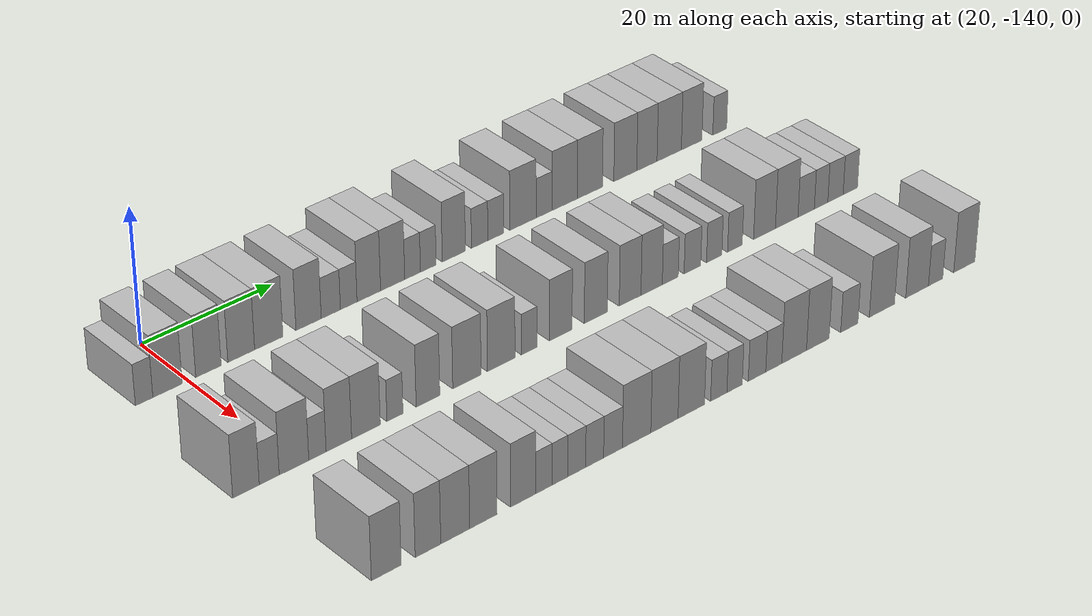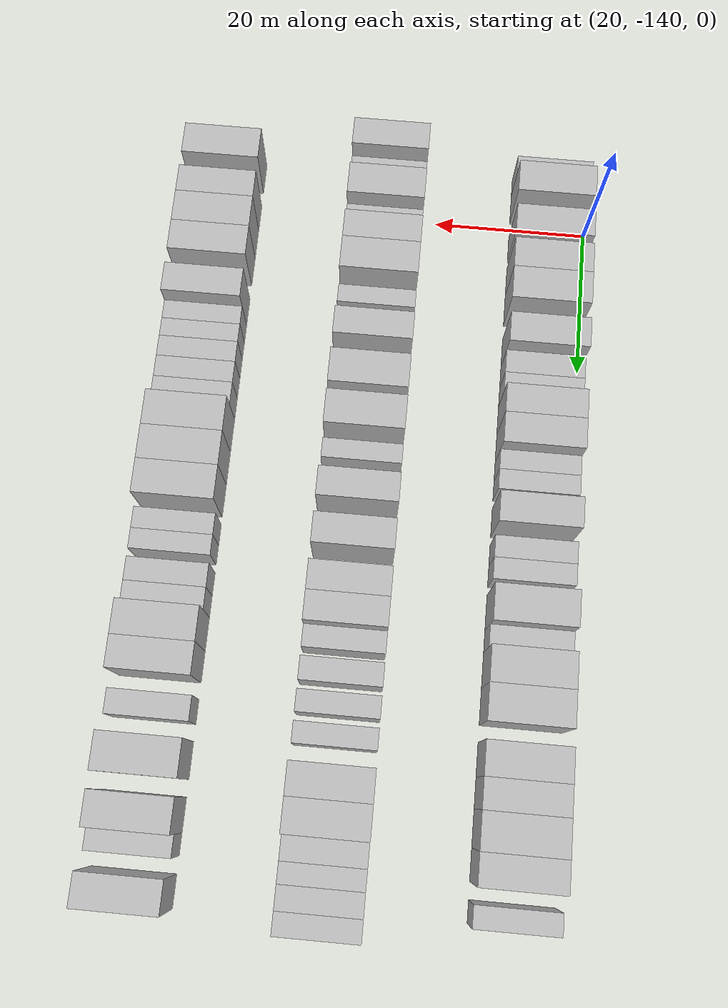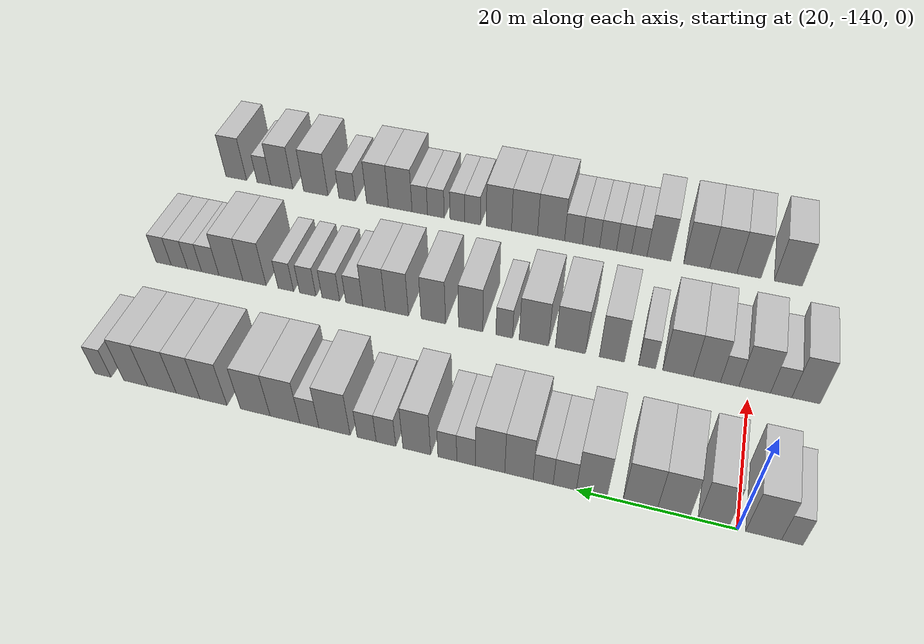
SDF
<sdf version="1.6">
 <world name="default">
  <model name="building_29">
   <static>1</static>
   <pose>25.0000 -146.4961 0 0.000000 0.000000 0.000000</pose>
   <link name="link">
    <pose>0 0 3.00 0 0 0</pose>
    <collision name="collision"><geometry><box><size>10.0000 2.5310 6.0000</size></box></geometry></collision>
    <visual name="visual">
     <cast_shadows>0</cast_shadows>
     <geometry><box><size>10.0000 2.5310 6.0000</size></box></geometry>
     <material>
      <script>
       <uri>model://HANNAS_wall/materials/scripts</uri>
       <uri>model://HANNAS_wall/materials/textures</uri>
       <name>vrc/HANNAS_wall</name>
      </script>
     </material>
    </visual>
   </link>
  </model>
  <model name="building_30">
   <static>1</static>
   <pose>25.0000 -143.0944 0 0.000000 0.000000 0.000000</pose>
   <link name="link">
    <pose>0 0 4.50 0 0 0</pose>
    <collision name="collision"><geometry><box><size>10.0000 4.2724 9.0000</size></box></geometry></collision>
    <visual name="visual">
     <cast_shadows>0</cast_shadows>
     <geometry><box><size>10.0000 4.2724 9.0000</size></box></geometry>
     <material>
      <script>
       <uri>model://HANNAS_wall/materials/scripts</uri>
       <uri>model://HANNAS_wall/materials/textures</uri>
       <name>vrc/HANNAS_wall</name>
      </script>
     </material>
    </visual>
   </link>
  </model>
  <model name="building_31">
   <static>1</static>
   <pose>25.0000 -137.0730 0 0.000000 0.000000 0.000000</pose>
   <link name="link">
    <pose>0 0 4.50 0 0 0</pose>
    <collision name="collision"><geometry><box><size>10.0000 3.7703 9.0000</size></box></geometry></collision>
    <visual name="visual">
     <cast_shadows>0</cast_shadows>
     <geometry><box><size>10.0000 3.7703 9.0000</size></box></geometry>
     <material>
      <script>
       <uri>model://HANNAS_wall/materials/scripts</uri>
       <uri>model://HANNAS_wall/materials/textures</uri>
       <name>vrc/HANNAS_wall</name>
      </script>
     </material>
    </visual>
   </link>
  </model>
  <model name="building_32">
   <static>1</static>
   <pose>25.0000 -132.1731 0 0.000000 0.000000 0.000000</pose>
   <link name="link">
    <pose>0 0 4.50 0 0 0</pose>
    <collision name="collision"><geometry><box><size>10.0000 4.0297 9.0000</size></box></geometry></collision>
    <visual name="visual">
     <cast_shadows>0</cast_shadows>
     <geometry><box><size>10.0000 4.0297 9.0000</size></box></geometry>
     <material>
      <script>
       <uri>model://HANNAS_wall/materials/scripts</uri>
       <uri>model://HANNAS_wall/materials/textures</uri>
       <name>vrc/HANNAS_wall</name>
      </script>
     </material>
    </visual>
   </link>
  </model>
  <model name="building_33">
   <static>1</static>
   <pose>25.0000 -128.0066 0 0.000000 0.000000 0.000000</pose>
   <link name="link">
    <pose>0 0 4.50 0 0 0</pose>
    <collision name="collision"><geometry><box><size>10.0000 4.3032 9.0000</size></box></geometry></collision>
    <visual name="visual">
     <cast_shadows>0</cast_shadows>
     <geometry><box><size>10.0000 4.3032 9.0000</size></box></geometry>
     <material>
      <script>
       <uri>model://HANNAS_wall/materials/scripts</uri>
       <uri>model://HANNAS_wall/materials/textures</uri>
       <name>vrc/HANNAS_wall</name>
      </script>
     </material>
    </visual>
   </link>
  </model>
  <model name="building_34">
   <static>1</static>
   <pose>25.0000 -121.8989 0 0.000000 0.000000 0.000000</pose>
   <link name="link">
    <pose>0 0 4.50 0 0 0</pose>
    <collision name="collision"><geometry><box><size>10.0000 3.9122 9.0000</size></box></geometry></collision>
    <visual name="visual">
     <cast_shadows>0</cast_shadows>
     <geometry><box><size>10.0000 3.9122 9.0000</size></box></geometry>
     <material>
      <script>
       <uri>model://HANNAS_wall/materials/scripts</uri>
       <uri>model://HANNAS_wall/materials/textures</uri>
       <name>vrc/HANNAS_wall</name>
      </script>
     </material>
    </visual>
   </link>
  </model>
  <model name="building_35">
   <static>1</static>
   <pose>25.0000 -118.4441 0 0.000000 0.000000 0.000000</pose>
   <link name="link">
    <pose>0 0 3.00 0 0 0</pose>
    <collision name="collision"><geometry><box><size>10.0000 2.9973 6.0000</size></box></geometry></collision>
    <visual name="visual">
     <cast_shadows>0</cast_shadows>
     <geometry><box><size>10.0000 2.9973 6.0000</size></box></geometry>
     <material>
      <script>
       <uri>model://HANNAS_wall/materials/scripts</uri>
       <uri>model://HANNAS_wall/materials/textures</uri>
       <name>vrc/HANNAS_wall</name>
      </script>
     </material>
    </visual>
   </link>
  </model>
  <model name="building_36">
   <static>1</static>
   <pose>25.0000 -115.6381 0 0.000000 0.000000 0.000000</pose>
   <link name="link">
    <pose>0 0 3.00 0 0 0</pose>
    <collision name="collision"><geometry><box><size>10.0000 2.6147 6.0000</size></box></geometry></collision>
    <visual name="visual">
     <cast_shadows>0</cast_shadows>
     <geometry><box><size>10.0000 2.6147 6.0000</size></box></geometry>
     <material>
      <script>
       <uri>model://HANNAS_wall/materials/scripts</uri>
       <uri>model://HANNAS_wall/materials/textures</uri>
       <name>vrc/HANNAS_wall</name>
      </script>
     </material>
    </visual>
   </link>
  </model>
  <model name="building_37">
   <static>1</static>
   <pose>25.0000 -112.4635 0 0.000000 0.000000 0.000000</pose>
   <link name="link">
    <pose>0 0 4.50 0 0 0</pose>
    <collision name="collision"><geometry><box><size>10.0000 3.7345 9.0000</size></box></geometry></collision>
    <visual name="visual">
     <cast_shadows>0</cast_shadows>
     <geometry><box><size>10.0000 3.7345 9.0000</size></box></geometry>
     <material>
      <script>
       <uri>model://HANNAS_wall/materials/scripts</uri>
       <uri>model://HANNAS_wall/materials/textures</uri>
       <name>vrc/HANNAS_wall</name>
      </script>
     </material>
    </visual>
   </link>
  </model>
  <model name="building_38">
   <static>1</static>
   <pose>25.0000 -108.6606 0 0.000000 0.000000 0.000000</pose>
   <link name="link">
    <pose>0 0 4.50 0 0 0</pose>
    <collision name="collision"><geometry><box><size>10.0000 3.8712 9.0000</size></box></geometry></collision>
    <visual name="visual">
     <cast_shadows>0</cast_shadows>
     <geometry><box><size>10.0000 3.8712 9.0000</size></box></geometry>
     <material>
      <script>
       <uri>model://HANNAS_wall/materials/scripts</uri>
       <uri>model://HANNAS_wall/materials/textures</uri>
       <name>vrc/HANNAS_wall</name>
      </script>
     </material>
    </visual>
   </link>
  </model>
  <model name="building_39">
   <static>1</static>
   <pose>25.0000 -105.4579 0 0.000000 0.000000 0.000000</pose>
   <link name="link">
    <pose>0 0 3.00 0 0 0</pose>
    <collision name="collision"><geometry><box><size>10.0000 2.5342 6.0000</size></box></geometry></collision>
    <visual name="visual">
     <cast_shadows>0</cast_shadows>
     <geometry><box><size>10.0000 2.5342 6.0000</size></box></geometry>
     <material>
      <script>
       <uri>model://HANNAS_wall/materials/scripts</uri>
       <uri>model://HANNAS_wall/materials/textures</uri>
       <name>vrc/HANNAS_wall</name>
      </script>
     </material>
    </visual>
   </link>
  </model>
  <model name="building_40">
   <static>1</static>
   <pose>25.0000 -102.9112 0 0.000000 0.000000 0.000000</pose>
   <link name="link">
    <pose>0 0 3.00 0 0 0</pose>
    <collision name="collision"><geometry><box><size>10.0000 2.5594 6.0000</size></box></geometry></collision>
    <visual name="visual">
     <cast_shadows>0</cast_shadows>
     <geometry><box><size>10.0000 2.5594 6.0000</size></box></geometry>
     <material>
      <script>
       <uri>model://HANNAS_wall/materials/scripts</uri>
       <uri>model://HANNAS_wall/materials/textures</uri>
       <name>vrc/HANNAS_wall</name>
      </script>
     </material>
    </visual>
   </link>
  </model>
  <model name="building_41">
   <static>1</static>
   <pose>25.0000 -98.7287 0 0.000000 0.000000 0.000000</pose>
   <link name="link">
    <pose>0 0 4.50 0 0 0</pose>
    <collision name="collision"><geometry><box><size>10.0000 3.8055 9.0000</size></box></geometry></collision>
    <visual name="visual">
     <cast_shadows>0</cast_shadows>
     <geometry><box><size>10.0000 3.8055 9.0000</size></box></geometry>
     <material>
      <script>
       <uri>model://HANNAS_wall/materials/scripts</uri>
       <uri>model://HANNAS_wall/materials/textures</uri>
       <name>vrc/HANNAS_wall</name>
      </script>
     </material>
    </visual>
   </link>
  </model>
  <model name="building_42">
   <static>1</static>
   <pose>25.0000 -94.4601 0 0.000000 0.000000 0.000000</pose>
   <link name="link">
    <pose>0 0 3.00 0 0 0</pose>
    <collision name="collision"><geometry><box><size>10.0000 2.7317 6.0000</size></box></geometry></collision>
    <visual name="visual">
     <cast_shadows>0</cast_shadows>
     <geometry><box><size>10.0000 2.7317 6.0000</size></box></geometry>
     <material>
      <script>
       <uri>model://HANNAS_wall/materials/scripts</uri>
       <uri>model://HANNAS_wall/materials/textures</uri>
       <name>vrc/HANNAS_wall</name>
      </script>
     </material>
    </visual>
   </link>
  </model>
  <model name="building_43">
   <static>1</static>
   <pose>25.0000 -91.7571 0 0.000000 0.000000 0.000000</pose>
   <link name="link">
    <pose>0 0 3.00 0 0 0</pose>
    <collision name="collision"><geometry><box><size>10.0000 2.6743 6.0000</size></box></geometry></collision>
    <visual name="visual">
     <cast_shadows>0</cast_shadows>
     <geometry><box><size>10.0000 2.6743 6.0000</size></box></geometry>
     <material>
      <script>
       <uri>model://HANNAS_wall/materials/scripts</uri>
       <uri>model://HANNAS_wall/materials/textures</uri>
       <name>vrc/HANNAS_wall</name>
      </script>
     </material>
    </visual>
   </link>
  </model>
  <model name="building_44">
   <static>1</static>
   <pose>25.0000 -87.1862 0 0.000000 0.000000 0.000000</pose>
   <link name="link">
    <pose>0 0 4.50 0 0 0</pose>
    <collision name="collision"><geometry><box><size>10.0000 4.4677 9.0000</size></box></geometry></collision>
    <visual name="visual">
     <cast_shadows>0</cast_shadows>
     <geometry><box><size>10.0000 4.4677 9.0000</size></box></geometry>
     <material>
      <script>
       <uri>model://HANNAS_wall/materials/scripts</uri>
       <uri>model://HANNAS_wall/materials/textures</uri>
       <name>vrc/HANNAS_wall</name>
      </script>
     </material>
    </visual>
   </link>
  </model>
  <model name="building_45">
   <static>1</static>
   <pose>25.0000 -83.5829 0 0.000000 0.000000 0.000000</pose>
   <link name="link">
    <pose>0 0 3.00 0 0 0</pose>
    <collision name="collision"><geometry><box><size>10.0000 2.7389 6.0000</size></box></geometry></collision>
    <visual name="visual">
     <cast_shadows>0</cast_shadows>
     <geometry><box><size>10.0000 2.7389 6.0000</size></box></geometry>
     <material>
      <script>
       <uri>model://HANNAS_wall/materials/scripts</uri>
       <uri>model://HANNAS_wall/materials/textures</uri>
       <name>vrc/HANNAS_wall</name>
      </script>
     </material>
    </visual>
   </link>
  </model>
  <model name="building_46">
   <static>1</static>
   <pose>25.0000 -80.0410 0 0.000000 0.000000 0.000000</pose>
   <link name="link">
    <pose>0 0 4.50 0 0 0</pose>
    <collision name="collision"><geometry><box><size>10.0000 4.3449 9.0000</size></box></geometry></collision>
    <visual name="visual">
     <cast_shadows>0</cast_shadows>
     <geometry><box><size>10.0000 4.3449 9.0000</size></box></geometry>
     <material>
      <script>
       <uri>model://HANNAS_wall/materials/scripts</uri>
       <uri>model://HANNAS_wall/materials/textures</uri>
       <name>vrc/HANNAS_wall</name>
      </script>
     </material>
    </visual>
   </link>
  </model>
  <model name="building_47">
   <static>1</static>
   <pose>25.0000 -75.6703 0 0.000000 0.000000 0.000000</pose>
   <link name="link">
    <pose>0 0 4.50 0 0 0</pose>
    <collision name="collision"><geometry><box><size>10.0000 4.3965 9.0000</size></box></geometry></collision>
    <visual name="visual">
     <cast_shadows>0</cast_shadows>
     <geometry><box><size>10.0000 4.3965 9.0000</size></box></geometry>
     <material>
      <script>
       <uri>model://HANNAS_wall/materials/scripts</uri>
       <uri>model://HANNAS_wall/materials/textures</uri>
       <name>vrc/HANNAS_wall</name>
      </script>
     </material>
    </visual>
   </link>
  </model>
  <model name="building_48">
   <static>1</static>
   <pose>25.0000 -69.4344 0 0.000000 0.000000 0.000000</pose>
   <link name="link">
    <pose>0 0 4.50 0 0 0</pose>
    <collision name="collision"><geometry><box><size>10.0000 4.0752 9.0000</size></box></geometry></collision>
    <visual name="visual">
     <cast_shadows>0</cast_shadows>
     <geometry><box><size>10.0000 4.0752 9.0000</size></box></geometry>
     <material>
      <script>
       <uri>model://HANNAS_wall/materials/scripts</uri>
       <uri>model://HANNAS_wall/materials/textures</uri>
       <name>vrc/HANNAS_wall</name>
      </script>
     </material>
    </visual>
   </link>
  </model>
  <model name="building_49">
   <static>1</static>
   <pose>25.0000 -65.5864 0 0.000000 0.000000 0.000000</pose>
   <link name="link">
    <pose>0 0 4.50 0 0 0</pose>
    <collision name="collision"><geometry><box><size>10.0000 3.6208 9.0000</size></box></geometry></collision>
    <visual name="visual">
     <cast_shadows>0</cast_shadows>
     <geometry><box><size>10.0000 3.6208 9.0000</size></box></geometry>
     <material>
      <script>
       <uri>model://HANNAS_wall/materials/scripts</uri>
       <uri>model://HANNAS_wall/materials/textures</uri>
       <name>vrc/HANNAS_wall</name>
      </script>
     </material>
    </visual>
   </link>
  </model>
  <model name="building_50">
   <static>1</static>
   <pose>25.0000 -61.5727 0 0.000000 0.000000 0.000000</pose>
   <link name="link">
    <pose>0 0 4.50 0 0 0</pose>
    <collision name="collision"><geometry><box><size>10.0000 4.4066 9.0000</size></box></geometry></collision>
    <visual name="visual">
     <cast_shadows>0</cast_shadows>
     <geometry><box><size>10.0000 4.4066 9.0000</size></box></geometry>
     <material>
      <script>
       <uri>model://HANNAS_wall/materials/scripts</uri>
       <uri>model://HANNAS_wall/materials/textures</uri>
       <name>vrc/HANNAS_wall</name>
      </script>
     </material>
    </visual>
   </link>
  </model>
  <model name="building_51">
   <static>1</static>
   <pose>25.0000 -57.4883 0 0.000000 0.000000 0.000000</pose>
   <link name="link">
    <pose>0 0 4.50 0 0 0</pose>
    <collision name="collision"><geometry><box><size>10.0000 3.7621 9.0000</size></box></geometry></collision>
    <visual name="visual">
     <cast_shadows>0</cast_shadows>
     <geometry><box><size>10.0000 3.7621 9.0000</size></box></geometry>
     <material>
      <script>
       <uri>model://HANNAS_wall/materials/scripts</uri>
       <uri>model://HANNAS_wall/materials/textures</uri>
       <name>vrc/HANNAS_wall</name>
      </script>
     </material>
    </visual>
   </link>
  </model>
  <model name="building_52">
   <static>1</static>
   <pose>25.0000 -52.3211 0 0.000000 0.000000 0.000000</pose>
   <link name="link">
    <pose>0 0 3.00 0 0 0</pose>
    <collision name="collision"><geometry><box><size>10.0000 2.5723 6.0000</size></box></geometry></collision>
    <visual name="visual">
     <cast_shadows>0</cast_shadows>
     <geometry><box><size>10.0000 2.5723 6.0000</size></box></geometry>
     <material>
      <script>
       <uri>model://HANNAS_wall/materials/scripts</uri>
       <uri>model://HANNAS_wall/materials/textures</uri>
       <name>vrc/HANNAS_wall</name>
      </script>
     </material>
    </visual>
   </link>
  </model>
  <model name="building_145">
   <static>1</static>
   <pose>47.0000 -147.7139 0 0.000000 0.000000 0.000000</pose>
   <link name="link">
    <pose>0 0 4.50 0 0 0</pose>
    <collision name="collision"><geometry><box><size>10.0000 3.7824 9.0000</size></box></geometry></collision>
    <visual name="visual">
     <cast_shadows>0</cast_shadows>
     <geometry><box><size>10.0000 3.7824 9.0000</size></box></geometry>
     <material>
      <script>
       <uri>model://HANNAS_wall/materials/scripts</uri>
       <uri>model://HANNAS_wall/materials/textures</uri>
       <name>vrc/HANNAS_wall</name>
      </script>
     </material>
    </visual>
   </link>
  </model>
  <model name="building_146">
   <static>1</static>
   <pose>47.0000 -144.3937 0 0.000000 0.000000 0.000000</pose>
   <link name="link">
    <pose>0 0 3.00 0 0 0</pose>
    <collision name="collision"><geometry><box><size>10.0000 2.8580 6.0000</size></box></geometry></collision>
    <visual name="visual">
     <cast_shadows>0</cast_shadows>
     <geometry><box><size>10.0000 2.8580 6.0000</size></box></geometry>
     <material>
      <script>
       <uri>model://HANNAS_wall/materials/scripts</uri>
       <uri>model://HANNAS_wall/materials/textures</uri>
       <name>vrc/HANNAS_wall</name>
      </script>
     </material>
    </visual>
   </link>
  </model>
  <model name="building_147">
   <static>1</static>
   <pose>47.0000 -140.8193 0 0.000000 0.000000 0.000000</pose>
   <link name="link">
    <pose>0 0 4.50 0 0 0</pose>
    <collision name="collision"><geometry><box><size>10.0000 4.2908 9.0000</size></box></geometry></collision>
    <visual name="visual">
     <cast_shadows>0</cast_shadows>
     <geometry><box><size>10.0000 4.2908 9.0000</size></box></geometry>
     <material>
      <script>
       <uri>model://HANNAS_wall/materials/scripts</uri>
       <uri>model://HANNAS_wall/materials/textures</uri>
       <name>vrc/HANNAS_wall</name>
      </script>
     </material>
    </visual>
   </link>
  </model>
  <model name="building_148">
   <static>1</static>
   <pose>47.0000 -137.4059 0 0.000000 0.000000 0.000000</pose>
   <link name="link">
    <pose>0 0 3.00 0 0 0</pose>
    <collision name="collision"><geometry><box><size>10.0000 2.5359 6.0000</size></box></geometry></collision>
    <visual name="visual">
     <cast_shadows>0</cast_shadows>
     <geometry><box><size>10.0000 2.5359 6.0000</size></box></geometry>
     <material>
      <script>
       <uri>model://HANNAS_wall/materials/scripts</uri>
       <uri>model://HANNAS_wall/materials/textures</uri>
       <name>vrc/HANNAS_wall</name>
      </script>
     </material>
    </visual>
   </link>
  </model>
  <model name="building_149">
   <static>1</static>
   <pose>47.0000 -134.2542 0 0.000000 0.000000 0.000000</pose>
   <link name="link">
    <pose>0 0 4.50 0 0 0</pose>
    <collision name="collision"><geometry><box><size>10.0000 3.7675 9.0000</size></box></geometry></collision>
    <visual name="visual">
     <cast_shadows>0</cast_shadows>
     <geometry><box><size>10.0000 3.7675 9.0000</size></box></geometry>
     <material>
      <script>
       <uri>model://HANNAS_wall/materials/scripts</uri>
       <uri>model://HANNAS_wall/materials/textures</uri>
       <name>vrc/HANNAS_wall</name>
      </script>
     </material>
    </visual>
   </link>
  </model>
  <model name="building_150">
   <static>1</static>
   <pose>47.0000 -130.2301 0 0.000000 0.000000 0.000000</pose>
   <link name="link">
    <pose>0 0 4.50 0 0 0</pose>
    <collision name="collision"><geometry><box><size>10.0000 4.2807 9.0000</size></box></geometry></collision>
    <visual name="visual">
     <cast_shadows>0</cast_shadows>
     <geometry><box><size>10.0000 4.2807 9.0000</size></box></geometry>
     <material>
      <script>
       <uri>model://HANNAS_wall/materials/scripts</uri>
       <uri>model://HANNAS_wall/materials/textures</uri>
       <name>vrc/HANNAS_wall</name>
      </script>
     </material>
    </visual>
   </link>
  </model>
  <model name="building_151">
   <static>1</static>
   <pose>47.0000 -125.8761 0 0.000000 0.000000 0.000000</pose>
   <link name="link">
    <pose>0 0 3.00 0 0 0</pose>
    <collision name="collision"><geometry><box><size>10.0000 2.4274 6.0000</size></box></geometry></collision>
    <visual name="visual">
     <cast_shadows>0</cast_shadows>
     <geometry><box><size>10.0000 2.4274 6.0000</size></box></geometry>
     <material>
      <script>
       <uri>model://HANNAS_wall/materials/scripts</uri>
       <uri>model://HANNAS_wall/materials/textures</uri>
       <name>vrc/HANNAS_wall</name>
      </script>
     </material>
    </visual>
   </link>
  </model>
  <model name="building_152">
   <static>1</static>
   <pose>47.0000 -120.8456 0 0.000000 0.000000 0.000000</pose>
   <link name="link">
    <pose>0 0 4.50 0 0 0</pose>
    <collision name="collision"><geometry><box><size>10.0000 3.6336 9.0000</size></box></geometry></collision>
    <visual name="visual">
     <cast_shadows>0</cast_shadows>
     <geometry><box><size>10.0000 3.6336 9.0000</size></box></geometry>
     <material>
      <script>
       <uri>model://HANNAS_wall/materials/scripts</uri>
       <uri>model://HANNAS_wall/materials/textures</uri>
       <name>vrc/HANNAS_wall</name>
      </script>
     </material>
    </visual>
   </link>
  </model>
  <model name="building_153">
   <static>1</static>
   <pose>47.0000 -114.8185 0 0.000000 0.000000 0.000000</pose>
   <link name="link">
    <pose>0 0 4.50 0 0 0</pose>
    <collision name="collision"><geometry><box><size>10.0000 4.4204 9.0000</size></box></geometry></collision>
    <visual name="visual">
     <cast_shadows>0</cast_shadows>
     <geometry><box><size>10.0000 4.4204 9.0000</size></box></geometry>
     <material>
      <script>
       <uri>model://HANNAS_wall/materials/scripts</uri>
       <uri>model://HANNAS_wall/materials/textures</uri>
       <name>vrc/HANNAS_wall</name>
      </script>
     </material>
    </visual>
   </link>
  </model>
  <model name="building_154">
   <static>1</static>
   <pose>47.0000 -109.4254 0 0.000000 0.000000 0.000000</pose>
   <link name="link">
    <pose>0 0 4.50 0 0 0</pose>
    <collision name="collision"><geometry><box><size>10.0000 4.3659 9.0000</size></box></geometry></collision>
    <visual name="visual">
     <cast_shadows>0</cast_shadows>
     <geometry><box><size>10.0000 4.3659 9.0000</size></box></geometry>
     <material>
      <script>
       <uri>model://HANNAS_wall/materials/scripts</uri>
       <uri>model://HANNAS_wall/materials/textures</uri>
       <name>vrc/HANNAS_wall</name>
      </script>
     </material>
    </visual>
   </link>
  </model>
  <model name="building_155">
   <static>1</static>
   <pose>47.0000 -104.9879 0 0.000000 0.000000 0.000000</pose>
   <link name="link">
    <pose>0 0 3.00 0 0 0</pose>
    <collision name="collision"><geometry><box><size>10.0000 2.5090 6.0000</size></box></geometry></collision>
    <visual name="visual">
     <cast_shadows>0</cast_shadows>
     <geometry><box><size>10.0000 2.5090 6.0000</size></box></geometry>
     <material>
      <script>
       <uri>model://HANNAS_wall/materials/scripts</uri>
       <uri>model://HANNAS_wall/materials/textures</uri>
       <name>vrc/HANNAS_wall</name>
      </script>
     </material>
    </visual>
   </link>
  </model>
  <model name="building_156">
   <static>1</static>
   <pose>47.0000 -99.8873 0 0.000000 0.000000 0.000000</pose>
   <link name="link">
    <pose>0 0 4.50 0 0 0</pose>
    <collision name="collision"><geometry><box><size>10.0000 3.6922 9.0000</size></box></geometry></collision>
    <visual name="visual">
     <cast_shadows>0</cast_shadows>
     <geometry><box><size>10.0000 3.6922 9.0000</size></box></geometry>
     <material>
      <script>
       <uri>model://HANNAS_wall/materials/scripts</uri>
       <uri>model://HANNAS_wall/materials/textures</uri>
       <name>vrc/HANNAS_wall</name>
      </script>
     </material>
    </visual>
   </link>
  </model>
  <model name="building_157">
   <static>1</static>
   <pose>47.0000 -94.1501 0 0.000000 0.000000 0.000000</pose>
   <link name="link">
    <pose>0 0 4.50 0 0 0</pose>
    <collision name="collision"><geometry><box><size>10.0000 3.7822 9.0000</size></box></geometry></collision>
    <visual name="visual">
     <cast_shadows>0</cast_shadows>
     <geometry><box><size>10.0000 3.7822 9.0000</size></box></geometry>
     <material>
      <script>
       <uri>model://HANNAS_wall/materials/scripts</uri>
       <uri>model://HANNAS_wall/materials/textures</uri>
       <name>vrc/HANNAS_wall</name>
      </script>
     </material>
    </visual>
   </link>
  </model>
  <model name="building_158">
   <static>1</static>
   <pose>47.0000 -88.4387 0 0.000000 0.000000 0.000000</pose>
   <link name="link">
    <pose>0 0 4.50 0 0 0</pose>
    <collision name="collision"><geometry><box><size>10.0000 3.6405 9.0000</size></box></geometry></collision>
    <visual name="visual">
     <cast_shadows>0</cast_shadows>
     <geometry><box><size>10.0000 3.6405 9.0000</size></box></geometry>
     <material>
      <script>
       <uri>model://HANNAS_wall/materials/scripts</uri>
       <uri>model://HANNAS_wall/materials/textures</uri>
       <name>vrc/HANNAS_wall</name>
      </script>
     </material>
    </visual>
   </link>
  </model>
  <model name="building_159">
   <static>1</static>
   <pose>47.0000 -84.8119 0 0.000000 0.000000 0.000000</pose>
   <link name="link">
    <pose>0 0 4.50 0 0 0</pose>
    <collision name="collision"><geometry><box><size>10.0000 3.6131 9.0000</size></box></geometry></collision>
    <visual name="visual">
     <cast_shadows>0</cast_shadows>
     <geometry><box><size>10.0000 3.6131 9.0000</size></box></geometry>
     <material>
      <script>
       <uri>model://HANNAS_wall/materials/scripts</uri>
       <uri>model://HANNAS_wall/materials/textures</uri>
       <name>vrc/HANNAS_wall</name>
      </script>
     </material>
    </visual>
   </link>
  </model>
  <model name="building_160">
   <static>1</static>
   <pose>47.0000 -81.6427 0 0.000000 0.000000 0.000000</pose>
   <link name="link">
    <pose>0 0 3.00 0 0 0</pose>
    <collision name="collision"><geometry><box><size>10.0000 2.7253 6.0000</size></box></geometry></collision>
    <visual name="visual">
     <cast_shadows>0</cast_shadows>
     <geometry><box><size>10.0000 2.7253 6.0000</size></box></geometry>
     <material>
      <script>
       <uri>model://HANNAS_wall/materials/scripts</uri>
       <uri>model://HANNAS_wall/materials/textures</uri>
       <name>vrc/HANNAS_wall</name>
      </script>
     </material>
    </visual>
   </link>
  </model>
  <model name="building_161">
   <static>1</static>
   <pose>47.0000 -77.8456 0 0.000000 0.000000 0.000000</pose>
   <link name="link">
    <pose>0 0 3.00 0 0 0</pose>
    <collision name="collision"><geometry><box><size>10.0000 2.8689 6.0000</size></box></geometry></collision>
    <visual name="visual">
     <cast_shadows>0</cast_shadows>
     <geometry><box><size>10.0000 2.8689 6.0000</size></box></geometry>
     <material>
      <script>
       <uri>model://HANNAS_wall/materials/scripts</uri>
       <uri>model://HANNAS_wall/materials/textures</uri>
       <name>vrc/HANNAS_wall</name>
      </script>
     </material>
    </visual>
   </link>
  </model>
  <model name="building_162">
   <static>1</static>
   <pose>47.0000 -74.0735 0 0.000000 0.000000 0.000000</pose>
   <link name="link">
    <pose>0 0 3.00 0 0 0</pose>
    <collision name="collision"><geometry><box><size>10.0000 2.6753 6.0000</size></box></geometry></collision>
    <visual name="visual">
     <cast_shadows>0</cast_shadows>
     <geometry><box><size>10.0000 2.6753 6.0000</size></box></geometry>
     <material>
      <script>
       <uri>model://HANNAS_wall/materials/scripts</uri>
       <uri>model://HANNAS_wall/materials/textures</uri>
       <name>vrc/HANNAS_wall</name>
      </script>
     </material>
    </visual>
   </link>
  </model>
  <model name="building_163">
   <static>1</static>
   <pose>47.0000 -70.4476 0 0.000000 0.000000 0.000000</pose>
   <link name="link">
    <pose>0 0 3.00 0 0 0</pose>
    <collision name="collision"><geometry><box><size>10.0000 2.5767 6.0000</size></box></geometry></collision>
    <visual name="visual">
     <cast_shadows>0</cast_shadows>
     <geometry><box><size>10.0000 2.5767 6.0000</size></box></geometry>
     <material>
      <script>
       <uri>model://HANNAS_wall/materials/scripts</uri>
       <uri>model://HANNAS_wall/materials/textures</uri>
       <name>vrc/HANNAS_wall</name>
      </script>
     </material>
    </visual>
   </link>
  </model>
  <model name="building_164">
   <static>1</static>
   <pose>47.0000 -65.2094 0 0.000000 0.000000 0.000000</pose>
   <link name="link">
    <pose>0 0 4.50 0 0 0</pose>
    <collision name="collision"><geometry><box><size>10.0000 3.8996 9.0000</size></box></geometry></collision>
    <visual name="visual">
     <cast_shadows>0</cast_shadows>
     <geometry><box><size>10.0000 3.8996 9.0000</size></box></geometry>
     <material>
      <script>
       <uri>model://HANNAS_wall/materials/scripts</uri>
       <uri>model://HANNAS_wall/materials/textures</uri>
       <name>vrc/HANNAS_wall</name>
      </script>
     </material>
    </visual>
   </link>
  </model>
  <model name="building_165">
   <static>1</static>
   <pose>47.0000 -61.2272 0 0.000000 0.000000 0.000000</pose>
   <link name="link">
    <pose>0 0 4.50 0 0 0</pose>
    <collision name="collision"><geometry><box><size>10.0000 4.0650 9.0000</size></box></geometry></collision>
    <visual name="visual">
     <cast_shadows>0</cast_shadows>
     <geometry><box><size>10.0000 4.0650 9.0000</size></box></geometry>
     <material>
      <script>
       <uri>model://HANNAS_wall/materials/scripts</uri>
       <uri>model://HANNAS_wall/materials/textures</uri>
       <name>vrc/HANNAS_wall</name>
      </script>
     </material>
    </visual>
   </link>
  </model>
  <model name="building_166">
   <static>1</static>
   <pose>47.0000 -57.7078 0 0.000000 0.000000 0.000000</pose>
   <link name="link">
    <pose>0 0 3.00 0 0 0</pose>
    <collision name="collision"><geometry><box><size>10.0000 2.9737 6.0000</size></box></geometry></collision>
    <visual name="visual">
     <cast_shadows>0</cast_shadows>
     <geometry><box><size>10.0000 2.9737 6.0000</size></box></geometry>
     <material>
      <script>
       <uri>model://HANNAS_wall/materials/scripts</uri>
       <uri>model://HANNAS_wall/materials/textures</uri>
       <name>vrc/HANNAS_wall</name>
      </script>
     </material>
    </visual>
   </link>
  </model>
  <model name="building_167">
   <static>1</static>
   <pose>47.0000 -54.9891 0 0.000000 0.000000 0.000000</pose>
   <link name="link">
    <pose>0 0 3.00 0 0 0</pose>
    <collision name="collision"><geometry><box><size>10.0000 2.4638 6.0000</size></box></geometry></collision>
    <visual name="visual">
     <cast_shadows>0</cast_shadows>
     <geometry><box><size>10.0000 2.4638 6.0000</size></box></geometry>
     <material>
      <script>
       <uri>model://HANNAS_wall/materials/scripts</uri>
       <uri>model://HANNAS_wall/materials/textures</uri>
       <name>vrc/HANNAS_wall</name>
      </script>
     </material>
    </visual>
   </link>
  </model>
  <model name="building_168">
   <static>1</static>
   <pose>47.0000 -52.3462 0 0.000000 0.000000 0.000000</pose>
   <link name="link">
    <pose>0 0 3.00 0 0 0</pose>
    <collision name="collision"><geometry><box><size>10.0000 2.8221 6.0000</size></box></geometry></collision>
    <visual name="visual">
     <cast_shadows>0</cast_shadows>
     <geometry><box><size>10.0000 2.8221 6.0000</size></box></geometry>
     <material>
      <script>
       <uri>model://HANNAS_wall/materials/scripts</uri>
       <uri>model://HANNAS_wall/materials/textures</uri>
       <name>vrc/HANNAS_wall</name>
      </script>
     </material>
    </visual>
   </link>
  </model>
  <model name="building_169">
   <static>1</static>
   <pose>47.0000 -49.6081 0 0.000000 0.000000 0.000000</pose>
   <link name="link">
    <pose>0 0 3.00 0 0 0</pose>
    <collision name="collision"><geometry><box><size>10.0000 2.6540 6.0000</size></box></geometry></collision>
    <visual name="visual">
     <cast_shadows>0</cast_shadows>
     <geometry><box><size>10.0000 2.6540 6.0000</size></box></geometry>
     <material>
      <script>
       <uri>model://HANNAS_wall/materials/scripts</uri>
       <uri>model://HANNAS_wall/materials/textures</uri>
       <name>vrc/HANNAS_wall</name>
      </script>
     </material>
    </visual>
   </link>
  </model>
  <model name="building_267">
   <static>1</static>
   <pose>69.0000 -144.6856 0 0.000000 0.000000 0.000000</pose>
   <link name="link">
    <pose>0 0 4.50 0 0 0</pose>
    <collision name="collision"><geometry><box><size>10.0000 4.2275 9.0000</size></box></geometry></collision>
    <visual name="visual">
     <cast_shadows>0</cast_shadows>
     <geometry><box><size>10.0000 4.2275 9.0000</size></box></geometry>
     <material>
      <script>
       <uri>model://HANNAS_wall/materials/scripts</uri>
       <uri>model://HANNAS_wall/materials/textures</uri>
       <name>vrc/HANNAS_wall</name>
      </script>
     </material>
    </visual>
   </link>
  </model>
  <model name="building_268">
   <static>1</static>
   <pose>69.0000 -138.7288 0 0.000000 0.000000 0.000000</pose>
   <link name="link">
    <pose>0 0 4.50 0 0 0</pose>
    <collision name="collision"><geometry><box><size>10.0000 3.6862 9.0000</size></box></geometry></collision>
    <visual name="visual">
     <cast_shadows>0</cast_shadows>
     <geometry><box><size>10.0000 3.6862 9.0000</size></box></geometry>
     <material>
      <script>
       <uri>model://HANNAS_wall/materials/scripts</uri>
       <uri>model://HANNAS_wall/materials/textures</uri>
       <name>vrc/HANNAS_wall</name>
      </script>
     </material>
    </visual>
   </link>
  </model>
  <model name="building_269">
   <static>1</static>
   <pose>69.0000 -134.7765 0 0.000000 0.000000 0.000000</pose>
   <link name="link">
    <pose>0 0 4.50 0 0 0</pose>
    <collision name="collision"><geometry><box><size>10.0000 4.2184 9.0000</size></box></geometry></collision>
    <visual name="visual">
     <cast_shadows>0</cast_shadows>
     <geometry><box><size>10.0000 4.2184 9.0000</size></box></geometry>
     <material>
      <script>
       <uri>model://HANNAS_wall/materials/scripts</uri>
       <uri>model://HANNAS_wall/materials/textures</uri>
       <name>vrc/HANNAS_wall</name>
      </script>
     </material>
    </visual>
   </link>
  </model>
  <model name="building_270">
   <static>1</static>
   <pose>69.0000 -130.6487 0 0.000000 0.000000 0.000000</pose>
   <link name="link">
    <pose>0 0 4.50 0 0 0</pose>
    <collision name="collision"><geometry><box><size>10.0000 4.0372 9.0000</size></box></geometry></collision>
    <visual name="visual">
     <cast_shadows>0</cast_shadows>
     <geometry><box><size>10.0000 4.0372 9.0000</size></box></geometry>
     <material>
      <script>
       <uri>model://HANNAS_wall/materials/scripts</uri>
       <uri>model://HANNAS_wall/materials/textures</uri>
       <name>vrc/HANNAS_wall</name>
      </script>
     </material>
    </visual>
   </link>
  </model>
  <model name="building_271">
   <static>1</static>
   <pose>69.0000 -124.7300 0 0.000000 0.000000 0.000000</pose>
   <link name="link">
    <pose>0 0 4.50 0 0 0</pose>
    <collision name="collision"><geometry><box><size>10.0000 3.8002 9.0000</size></box></geometry></collision>
    <visual name="visual">
     <cast_shadows>0</cast_shadows>
     <geometry><box><size>10.0000 3.8002 9.0000</size></box></geometry>
     <material>
      <script>
       <uri>model://HANNAS_wall/materials/scripts</uri>
       <uri>model://HANNAS_wall/materials/textures</uri>
       <name>vrc/HANNAS_wall</name>
      </script>
     </material>
    </visual>
   </link>
  </model>
  <model name="building_272">
   <static>1</static>
   <pose>69.0000 -121.5892 0 0.000000 0.000000 0.000000</pose>
   <link name="link">
    <pose>0 0 3.00 0 0 0</pose>
    <collision name="collision"><geometry><box><size>10.0000 2.4815 6.0000</size></box></geometry></collision>
    <visual name="visual">
     <cast_shadows>0</cast_shadows>
     <geometry><box><size>10.0000 2.4815 6.0000</size></box></geometry>
     <material>
      <script>
       <uri>model://HANNAS_wall/materials/scripts</uri>
       <uri>model://HANNAS_wall/materials/textures</uri>
       <name>vrc/HANNAS_wall</name>
      </script>
     </material>
    </visual>
   </link>
  </model>
  <model name="building_273">
   <static>1</static>
   <pose>69.0000 -119.1459 0 0.000000 0.000000 0.000000</pose>
   <link name="link">
    <pose>0 0 3.00 0 0 0</pose>
    <collision name="collision"><geometry><box><size>10.0000 2.4050 6.0000</size></box></geometry></collision>
    <visual name="visual">
     <cast_shadows>0</cast_shadows>
     <geometry><box><size>10.0000 2.4050 6.0000</size></box></geometry>
     <material>
      <script>
       <uri>model://HANNAS_wall/materials/scripts</uri>
       <uri>model://HANNAS_wall/materials/textures</uri>
       <name>vrc/HANNAS_wall</name>
      </script>
     </material>
    </visual>
   </link>
  </model>
  <model name="building_274">
   <static>1</static>
   <pose>69.0000 -116.5830 0 0.000000 0.000000 0.000000</pose>
   <link name="link">
    <pose>0 0 3.00 0 0 0</pose>
    <collision name="collision"><geometry><box><size>10.0000 2.7207 6.0000</size></box></geometry></collision>
    <visual name="visual">
     <cast_shadows>0</cast_shadows>
     <geometry><box><size>10.0000 2.7207 6.0000</size></box></geometry>
     <material>
      <script>
       <uri>model://HANNAS_wall/materials/scripts</uri>
       <uri>model://HANNAS_wall/materials/textures</uri>
       <name>vrc/HANNAS_wall</name>
      </script>
     </material>
    </visual>
   </link>
  </model>
  <model name="building_275">
   <static>1</static>
   <pose>69.0000 -113.8320 0 0.000000 0.000000 0.000000</pose>
   <link name="link">
    <pose>0 0 3.00 0 0 0</pose>
    <collision name="collision"><geometry><box><size>10.0000 2.7813 6.0000</size></box></geometry></collision>
    <visual name="visual">
     <cast_shadows>0</cast_shadows>
     <geometry><box><size>10.0000 2.7813 6.0000</size></box></geometry>
     <material>
      <script>
       <uri>model://HANNAS_wall/materials/scripts</uri>
       <uri>model://HANNAS_wall/materials/textures</uri>
       <name>vrc/HANNAS_wall</name>
      </script>
     </material>
    </visual>
   </link>
  </model>
  <model name="building_276">
   <static>1</static>
   <pose>69.0000 -110.9694 0 0.000000 0.000000 0.000000</pose>
   <link name="link">
    <pose>0 0 3.00 0 0 0</pose>
    <collision name="collision"><geometry><box><size>10.0000 2.9440 6.0000</size></box></geometry></collision>
    <visual name="visual">
     <cast_shadows>0</cast_shadows>
     <geometry><box><size>10.0000 2.9440 6.0000</size></box></geometry>
     <material>
      <script>
       <uri>model://HANNAS_wall/materials/scripts</uri>
       <uri>model://HANNAS_wall/materials/textures</uri>
       <name>vrc/HANNAS_wall</name>
      </script>
     </material>
    </visual>
   </link>
  </model>
  <model name="building_277">
   <static>1</static>
   <pose>69.0000 -107.2572 0 0.000000 0.000000 0.000000</pose>
   <link name="link">
    <pose>0 0 4.50 0 0 0</pose>
    <collision name="collision"><geometry><box><size>10.0000 4.4804 9.0000</size></box></geometry></collision>
    <visual name="visual">
     <cast_shadows>0</cast_shadows>
     <geometry><box><size>10.0000 4.4804 9.0000</size></box></geometry>
     <material>
      <script>
       <uri>model://HANNAS_wall/materials/scripts</uri>
       <uri>model://HANNAS_wall/materials/textures</uri>
       <name>vrc/HANNAS_wall</name>
      </script>
     </material>
    </visual>
   </link>
  </model>
  <model name="building_278">
   <static>1</static>
   <pose>69.0000 -102.8430 0 0.000000 0.000000 0.000000</pose>
   <link name="link">
    <pose>0 0 4.50 0 0 0</pose>
    <collision name="collision"><geometry><box><size>10.0000 4.3479 9.0000</size></box></geometry></collision>
    <visual name="visual">
     <cast_shadows>0</cast_shadows>
     <geometry><box><size>10.0000 4.3479 9.0000</size></box></geometry>
     <material>
      <script>
       <uri>model://HANNAS_wall/materials/scripts</uri>
       <uri>model://HANNAS_wall/materials/textures</uri>
       <name>vrc/HANNAS_wall</name>
      </script>
     </material>
    </visual>
   </link>
  </model>
  <model name="building_279">
   <static>1</static>
   <pose>69.0000 -98.5287 0 0.000000 0.000000 0.000000</pose>
   <link name="link">
    <pose>0 0 4.50 0 0 0</pose>
    <collision name="collision"><geometry><box><size>10.0000 4.2807 9.0000</size></box></geometry></collision>
    <visual name="visual">
     <cast_shadows>0</cast_shadows>
     <geometry><box><size>10.0000 4.2807 9.0000</size></box></geometry>
     <material>
      <script>
       <uri>model://HANNAS_wall/materials/scripts</uri>
       <uri>model://HANNAS_wall/materials/textures</uri>
       <name>vrc/HANNAS_wall</name>
      </script>
     </material>
    </visual>
   </link>
  </model>
  <model name="building_280">
   <static>1</static>
   <pose>69.0000 -94.0546 0 0.000000 0.000000 0.000000</pose>
   <link name="link">
    <pose>0 0 3.00 0 0 0</pose>
    <collision name="collision"><geometry><box><size>10.0000 2.6677 6.0000</size></box></geometry></collision>
    <visual name="visual">
     <cast_shadows>0</cast_shadows>
     <geometry><box><size>10.0000 2.6677 6.0000</size></box></geometry>
     <material>
      <script>
       <uri>model://HANNAS_wall/materials/scripts</uri>
       <uri>model://HANNAS_wall/materials/textures</uri>
       <name>vrc/HANNAS_wall</name>
      </script>
     </material>
    </visual>
   </link>
  </model>
  <model name="building_281">
   <static>1</static>
   <pose>69.0000 -91.4541 0 0.000000 0.000000 0.000000</pose>
   <link name="link">
    <pose>0 0 3.00 0 0 0</pose>
    <collision name="collision"><geometry><box><size>10.0000 2.5331 6.0000</size></box></geometry></collision>
    <visual name="visual">
     <cast_shadows>0</cast_shadows>
     <geometry><box><size>10.0000 2.5331 6.0000</size></box></geometry>
     <material>
      <script>
       <uri>model://HANNAS_wall/materials/scripts</uri>
       <uri>model://HANNAS_wall/materials/textures</uri>
       <name>vrc/HANNAS_wall</name>
      </script>
     </material>
    </visual>
   </link>
  </model>
  <model name="building_282">
   <static>1</static>
   <pose>69.0000 -87.7298 0 0.000000 0.000000 0.000000</pose>
   <link name="link">
    <pose>0 0 3.00 0 0 0</pose>
    <collision name="collision"><geometry><box><size>10.0000 2.9155 6.0000</size></box></geometry></collision>
    <visual name="visual">
     <cast_shadows>0</cast_shadows>
     <geometry><box><size>10.0000 2.9155 6.0000</size></box></geometry>
     <material>
      <script>
       <uri>model://HANNAS_wall/materials/scripts</uri>
       <uri>model://HANNAS_wall/materials/textures</uri>
       <name>vrc/HANNAS_wall</name>
      </script>
     </material>
    </visual>
   </link>
  </model>
  <model name="building_283">
   <static>1</static>
   <pose>69.0000 -84.9224 0 0.000000 0.000000 0.000000</pose>
   <link name="link">
    <pose>0 0 3.00 0 0 0</pose>
    <collision name="collision"><geometry><box><size>10.0000 2.6993 6.0000</size></box></geometry></collision>
    <visual name="visual">
     <cast_shadows>0</cast_shadows>
     <geometry><box><size>10.0000 2.6993 6.0000</size></box></geometry>
     <material>
      <script>
       <uri>model://HANNAS_wall/materials/scripts</uri>
       <uri>model://HANNAS_wall/materials/textures</uri>
       <name>vrc/HANNAS_wall</name>
      </script>
     </material>
    </visual>
   </link>
  </model>
  <model name="building_284">
   <static>1</static>
   <pose>69.0000 -81.4753 0 0.000000 0.000000 0.000000</pose>
   <link name="link">
    <pose>0 0 4.50 0 0 0</pose>
    <collision name="collision"><geometry><box><size>10.0000 4.1950 9.0000</size></box></geometry></collision>
    <visual name="visual">
     <cast_shadows>0</cast_shadows>
     <geometry><box><size>10.0000 4.1950 9.0000</size></box></geometry>
     <material>
      <script>
       <uri>model://HANNAS_wall/materials/scripts</uri>
       <uri>model://HANNAS_wall/materials/textures</uri>
       <name>vrc/HANNAS_wall</name>
      </script>
     </material>
    </visual>
   </link>
  </model>
  <model name="building_285">
   <static>1</static>
   <pose>69.0000 -77.4336 0 0.000000 0.000000 0.000000</pose>
   <link name="link">
    <pose>0 0 4.50 0 0 0</pose>
    <collision name="collision"><geometry><box><size>10.0000 3.8884 9.0000</size></box></geometry></collision>
    <visual name="visual">
     <cast_shadows>0</cast_shadows>
     <geometry><box><size>10.0000 3.8884 9.0000</size></box></geometry>
     <material>
      <script>
       <uri>model://HANNAS_wall/materials/scripts</uri>
       <uri>model://HANNAS_wall/materials/textures</uri>
       <name>vrc/HANNAS_wall</name>
      </script>
     </material>
    </visual>
   </link>
  </model>
  <model name="building_286">
   <static>1</static>
   <pose>69.0000 -71.9911 0 0.000000 0.000000 0.000000</pose>
   <link name="link">
    <pose>0 0 3.00 0 0 0</pose>
    <collision name="collision"><geometry><box><size>10.0000 2.9965 6.0000</size></box></geometry></collision>
    <visual name="visual">
     <cast_shadows>0</cast_shadows>
     <geometry><box><size>10.0000 2.9965 6.0000</size></box></geometry>
     <material>
      <script>
       <uri>model://HANNAS_wall/materials/scripts</uri>
       <uri>model://HANNAS_wall/materials/textures</uri>
       <name>vrc/HANNAS_wall</name>
      </script>
     </material>
    </visual>
   </link>
  </model>
  <model name="building_287">
   <static>1</static>
   <pose>69.0000 -66.2637 0 0.000000 0.000000 0.000000</pose>
   <link name="link">
    <pose>0 0 4.50 0 0 0</pose>
    <collision name="collision"><geometry><box><size>10.0000 4.4583 9.0000</size></box></geometry></collision>
    <visual name="visual">
     <cast_shadows>0</cast_shadows>
     <geometry><box><size>10.0000 4.4583 9.0000</size></box></geometry>
     <material>
      <script>
       <uri>model://HANNAS_wall/materials/scripts</uri>
       <uri>model://HANNAS_wall/materials/textures</uri>
       <name>vrc/HANNAS_wall</name>
      </script>
     </material>
    </visual>
   </link>
  </model>
  <model name="building_288">
   <static>1</static>
   <pose>69.0000 -59.9913 0 0.000000 0.000000 0.000000</pose>
   <link name="link">
    <pose>0 0 4.50 0 0 0</pose>
    <collision name="collision"><geometry><box><size>10.0000 4.0865 9.0000</size></box></geometry></collision>
    <visual name="visual">
     <cast_shadows>0</cast_shadows>
     <geometry><box><size>10.0000 4.0865 9.0000</size></box></geometry>
     <material>
      <script>
       <uri>model://HANNAS_wall/materials/scripts</uri>
       <uri>model://HANNAS_wall/materials/textures</uri>
       <name>vrc/HANNAS_wall</name>
      </script>
     </material>
    </visual>
   </link>
  </model>
  <model name="building_289">
   <static>1</static>
   <pose>69.0000 -56.6496 0 0.000000 0.000000 0.000000</pose>
   <link name="link">
    <pose>0 0 3.00 0 0 0</pose>
    <collision name="collision"><geometry><box><size>10.0000 2.5970 6.0000</size></box></geometry></collision>
    <visual name="visual">
     <cast_shadows>0</cast_shadows>
     <geometry><box><size>10.0000 2.5970 6.0000</size></box></geometry>
     <material>
      <script>
       <uri>model://HANNAS_wall/materials/scripts</uri>
       <uri>model://HANNAS_wall/materials/textures</uri>
       <name>vrc/HANNAS_wall</name>
      </script>
     </material>
    </visual>
   </link>
  </model>
  <model name="building_290">
   <static>1</static>
   <pose>69.0000 -51.4085 0 0.000000 0.000000 0.000000</pose>
   <link name="link">
    <pose>0 0 4.50 0 0 0</pose>
    <collision name="collision"><geometry><box><size>10.0000 3.8853 9.0000</size></box></geometry></collision>
    <visual name="visual">
     <cast_shadows>0</cast_shadows>
     <geometry><box><size>10.0000 3.8853 9.0000</size></box></geometry>
     <material>
      <script>
       <uri>model://HANNAS_wall/materials/scripts</uri>
       <uri>model://HANNAS_wall/materials/textures</uri>
       <name>vrc/HANNAS_wall</name>
      </script>
     </material>
    </visual>
   </link>
  </model>
 </world>
</sdf>
